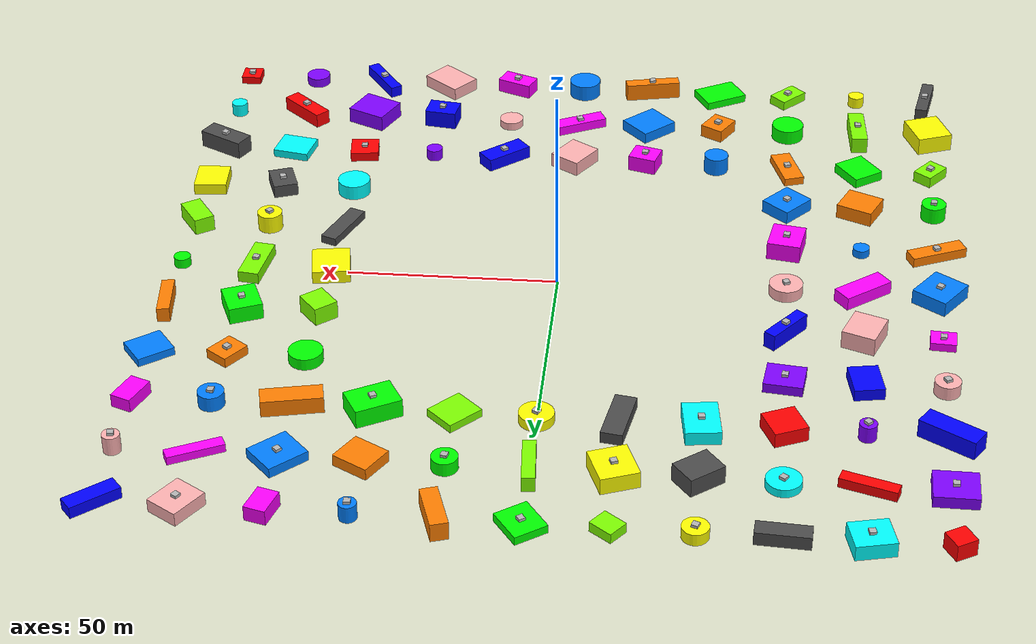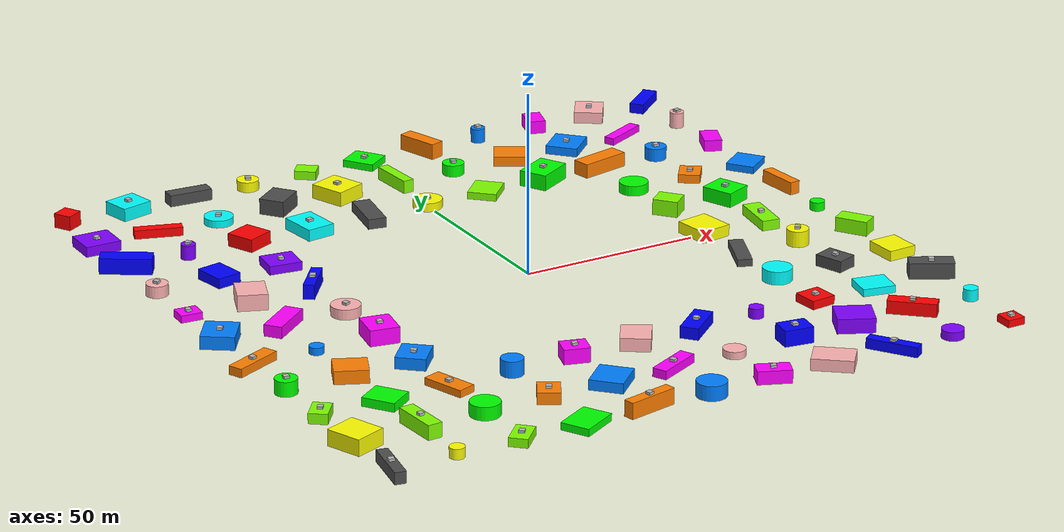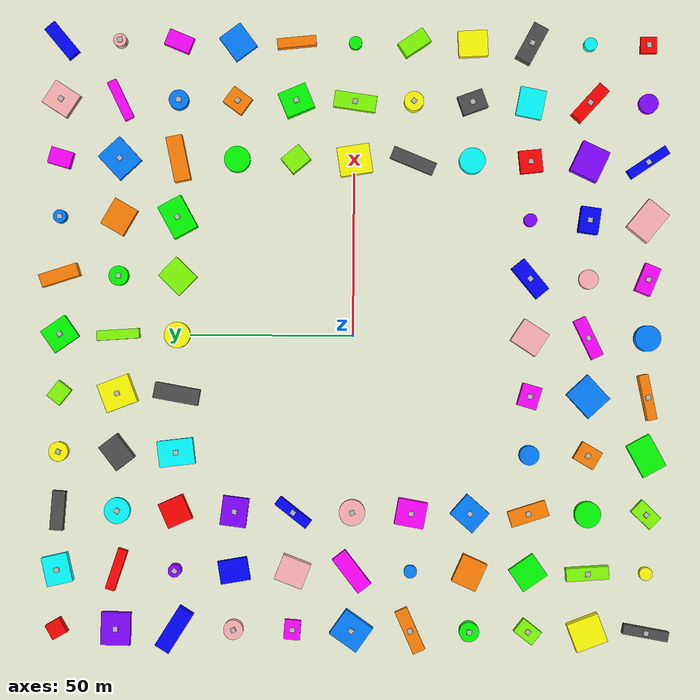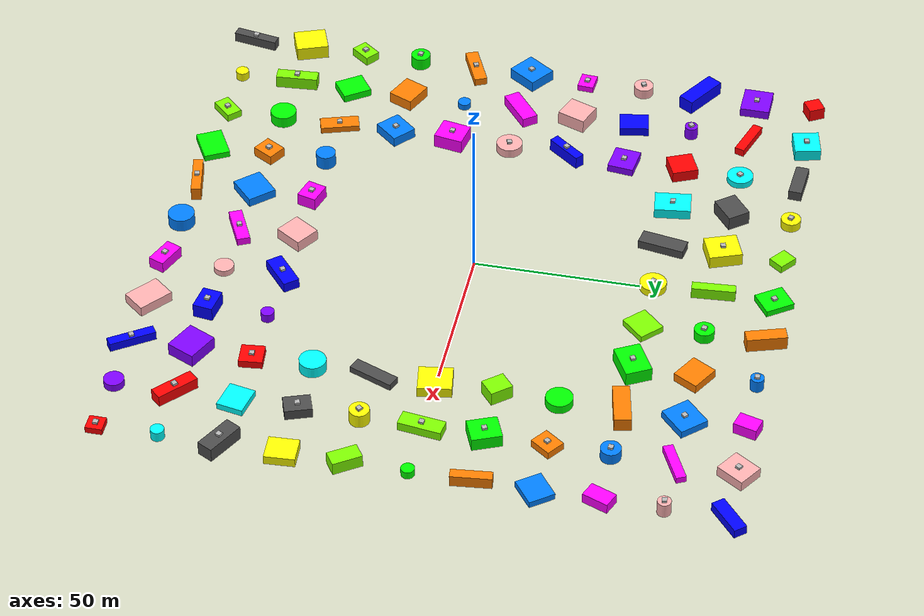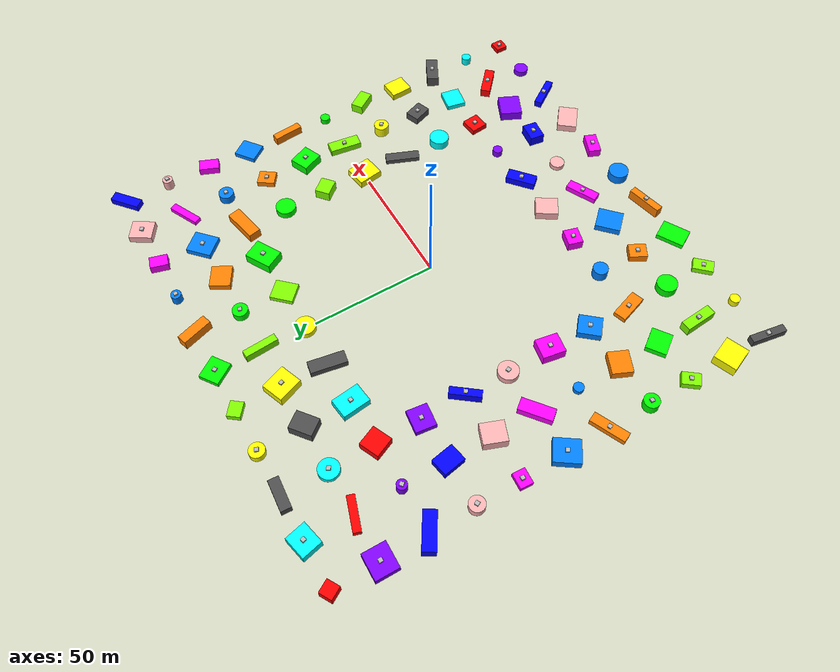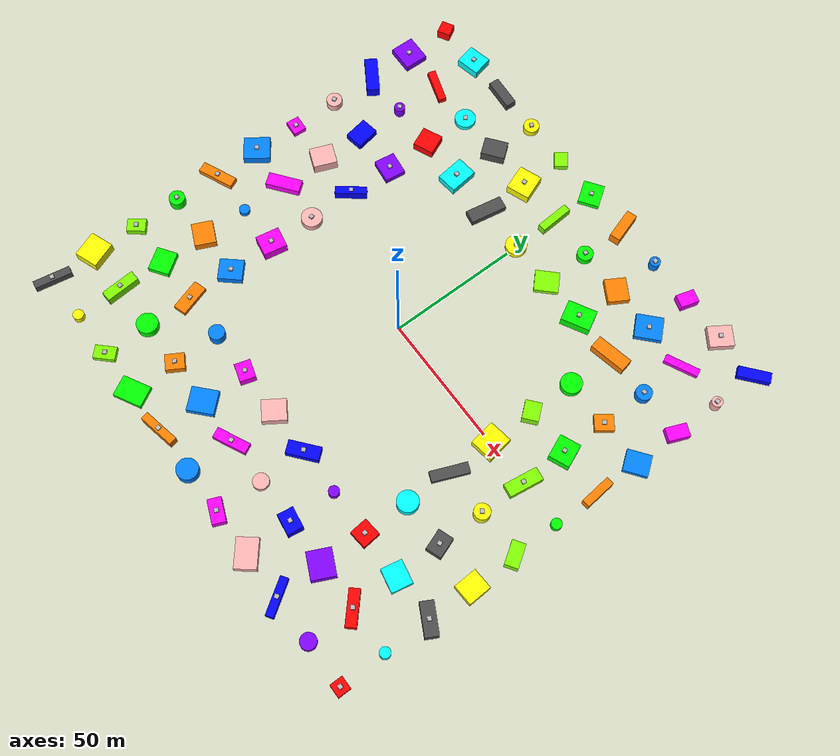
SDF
<sdf version="1.9">
 <world name="obs">
  <physics name="1ms" type="ignore">
   <max_step_size>0.001</max_step_size>
   <real_time_factor>1.0</real_time_factor>
  </physics>
  <plugin filename="gz-sim-physics-system" name="gz::sim::systems::Physics"/>
  <plugin filename="gz-sim-sensors-system" name="gz::sim::systems::Sensors">
   <render_engine>ogre2</render_engine>
  </plugin>
  <plugin filename="gz-sim-user-commands-system" name="gz::sim::systems::UserCommands"/>
  <plugin filename="gz-sim-scene-broadcaster-system" name="gz::sim::systems::SceneBroadcaster"/>
  <plugin filename="gz-sim-imu-system" name="gz::sim::systems::Imu"/>
  <plugin filename="gz-sim-navsat-system" name="gz::sim::systems::NavSat"/>
  <scene><ambient>1.0 1.0 1.0</ambient><background>0.8 0.8 0.8</background></scene>
  <spherical_coordinates>
   <latitude_deg>-35.363262</latitude_deg>
   <longitude_deg>149.165237</longitude_deg>
   <elevation>584</elevation>
   <heading_deg>0</heading_deg>
   <surface_model>EARTH_WGS84</surface_model>
  </spherical_coordinates>
  <light type="directional" name="sun">
   <pose>0 0 10 0 0 0</pose>
   <diffuse>0.8 0.8 0.8 1</diffuse>
   <specular>0.8 0.8 0.8 1</specular>
   <attenuation>
    <range>1000</range>
    <constant>0.9</constant>
    <linear>0.01</linear>
    <quadratic>0.001</quadratic>
   </attenuation>
   <direction>-0.5 0.1 -0.9</direction>
  </light>
  <model name="axes">
   <static>1</static>
   <link name="link">
    <sensor name="navsat_sensor" type="navsat"><always_on>1</always_on><update_rate>1</update_rate></sensor>
   </link>
  </model>
  <include><uri>model://colony</uri><pose degrees="true">0 0 0.195 0 0 90</pose></include>
 </world>
</sdf>

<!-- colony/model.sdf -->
<sdf version="1.10">
  <model name="slam_colony_nonneighbor">
    <static>true</static>
    <link name="obj_0">
      <pose>-90 -90 1.00 0 0 0.0000</pose>
      <visual name="visual">
        <geometry><box><size>5 5 2.0</size></box></geometry>
        <material><ambient>1 0 0 1</ambient><diffuse>1 0 0 1</diffuse></material>
      </visual>
      <collision name="collision">
        <geometry><box><size>5 5 2.0</size></box></geometry>
      </collision>
      <visual name="roof_0">
        <pose>0 0 1.35 0 0 0</pose>
        <geometry><box><size>1.5 1.5 0.7</size></box></geometry>
      </visual>
    </link>
    <link name="obj_1">
      <pose>-90 -72 1.20 0 0 0.2967</pose>
      <visual name="visual">
        <geometry><cylinder><radius>3</radius><length>2.4</length></cylinder></geometry>
        <material><ambient>0.5 0 1 1</ambient><diffuse>0.5 0 1 1</diffuse></material>
      </visual>
      <collision name="collision">
        <geometry><cylinder><radius>3</radius><length>2.4</length></cylinder></geometry>
      </collision>
    </link>
    <link name="obj_2">
      <pose>-90 -54 1.40 0 0 0.5934</pose>
      <visual name="visual">
        <geometry><box><size>14 3 2.8</size></box></geometry>
        <material><ambient>0 0 1 1</ambient><diffuse>0 0 1 1</diffuse></material>
      </visual>
      <collision name="collision">
        <geometry><box><size>14 3 2.8</size></box></geometry>
      </collision>
      <visual name="roof_2">
        <pose>0 0 1.75 0 0 0</pose>
        <geometry><box><size>1.5 1.5 0.7</size></box></geometry>
      </visual>
    </link>
    <link name="obj_3">
      <pose>-90 -36 1.60 0 0 0.8901</pose>
      <visual name="visual">
        <geometry><box><size>11 8 3.2</size></box></geometry>
        <material><ambient>1 0.7 0.7 1</ambient><diffuse>1 0.7 0.7 1</diffuse></material>
      </visual>
      <collision name="collision">
        <geometry><box><size>11 8 3.2</size></box></geometry>
      </collision>
    </link>
    <link name="obj_4">
      <pose>-90 -18 1.80 0 0 1.1868</pose>
      <visual name="visual">
        <geometry><box><size>9 5 3.6</size></box></geometry>
        <material><ambient>1 0 1 1</ambient><diffuse>1 0 1 1</diffuse></material>
      </visual>
      <collision name="collision">
        <geometry><box><size>9 5 3.6</size></box></geometry>
      </collision>
      <visual name="roof_4">
        <pose>0 0 2.15 0 0 0</pose>
        <geometry><box><size>1.5 1.5 0.7</size></box></geometry>
      </visual>
    </link>
    <link name="obj_5">
      <pose>-90 0 2.00 0 0 1.4835</pose>
      <visual name="visual">
        <geometry><cylinder><radius>4</radius><length>4.0</length></cylinder></geometry>
        <material><ambient>0 0.5 1 1</ambient><diffuse>0 0.5 1 1</diffuse></material>
      </visual>
      <collision name="collision">
        <geometry><cylinder><radius>4</radius><length>4.0</length></cylinder></geometry>
      </collision>
    </link>
    <link name="obj_6">
      <pose>-90 18 2.20 0 0 1.7802</pose>
      <visual name="visual">
        <geometry><box><size>14 3 4.4</size></box></geometry>
        <material><ambient>1 0.5 0 1</ambient><diffuse>1 0.5 0 1</diffuse></material>
      </visual>
      <collision name="collision">
        <geometry><box><size>14 3 4.4</size></box></geometry>
      </collision>
      <visual name="roof_6">
        <pose>0 0 2.55 0 0 0</pose>
        <geometry><box><size>1.5 1.5 0.7</size></box></geometry>
      </visual>
    </link>
    <link name="obj_7">
      <pose>-90 36 1.00 0 0 2.0769</pose>
      <visual name="visual">
        <geometry><box><size>11 8 2.0</size></box></geometry>
        <material><ambient>0 1 0 1</ambient><diffuse>0 1 0 1</diffuse></material>
      </visual>
      <collision name="collision">
        <geometry><box><size>11 8 2.0</size></box></geometry>
      </collision>
    </link>
    <link name="obj_8">
      <pose>-90 54 1.20 0 0 2.3736</pose>
      <visual name="visual">
        <geometry><box><size>8 5 2.4</size></box></geometry>
        <material><ambient>0.5 1 0 1</ambient><diffuse>0.5 1 0 1</diffuse></material>
      </visual>
      <collision name="collision">
        <geometry><box><size>8 5 2.4</size></box></geometry>
      </collision>
      <visual name="roof_8">
        <pose>0 0 1.55 0 0 0</pose>
        <geometry><box><size>1.5 1.5 0.7</size></box></geometry>
      </visual>
    </link>
    <link name="obj_9">
      <pose>-90 72 1.40 0 0 2.6704</pose>
      <visual name="visual">
        <geometry><cylinder><radius>2</radius><length>2.8</length></cylinder></geometry>
        <material><ambient>1 1 0 1</ambient><diffuse>1 1 0 1</diffuse></material>
      </visual>
      <collision name="collision">
        <geometry><cylinder><radius>2</radius><length>2.8</length></cylinder></geometry>
      </collision>
    </link>
    <link name="obj_10">
      <pose>-90 90 1.60 0 0 2.9671</pose>
      <visual name="visual">
        <geometry><box><size>14 3 3.2</size></box></geometry>
        <material><ambient>0.3 0.3 0.3 1</ambient><diffuse>0.3 0.3 0.3 1</diffuse></material>
      </visual>
      <collision name="collision">
        <geometry><box><size>14 3 3.2</size></box></geometry>
      </collision>
      <visual name="roof_10">
        <pose>0 0 1.95 0 0 0</pose>
        <geometry><box><size>1.5 1.5 0.7</size></box></geometry>
      </visual>
    </link>
    <link name="obj_11">
      <pose>-72 -90 1.60 0 0 0.5411</pose>
      <visual name="visual">
        <geometry><cylinder><radius>2</radius><length>3.2</length></cylinder></geometry>
        <material><ambient>0 1 1 1</ambient><diffuse>0 1 1 1</diffuse></material>
      </visual>
      <collision name="collision">
        <geometry><cylinder><radius>2</radius><length>3.2</length></cylinder></geometry>
      </collision>
    </link>
    <link name="obj_12">
      <pose>-72 -72 1.80 0 0 0.8378</pose>
      <visual name="visual">
        <geometry><box><size>13 4 3.6</size></box></geometry>
        <material><ambient>1 0 0 1</ambient><diffuse>1 0 0 1</diffuse></material>
      </visual>
      <collision name="collision">
        <geometry><box><size>13 4 3.6</size></box></geometry>
      </collision>
      <visual name="roof_12">
        <pose>0 0 2.15 0 0 0</pose>
        <geometry><box><size>1.5 1.5 0.7</size></box></geometry>
      </visual>
    </link>
    <link name="obj_13">
      <pose>-72 -54 2.00 0 0 1.1345</pose>
      <visual name="visual">
        <geometry><box><size>10 9 4.0</size></box></geometry>
        <material><ambient>0.5 0 1 1</ambient><diffuse>0.5 0 1 1</diffuse></material>
      </visual>
      <collision name="collision">
        <geometry><box><size>10 9 4.0</size></box></geometry>
      </collision>
    </link>
    <link name="obj_14">
      <pose>-72 -36 2.20 0 0 1.4312</pose>
      <visual name="visual">
        <geometry><box><size>8 6 4.4</size></box></geometry>
        <material><ambient>0 0 1 1</ambient><diffuse>0 0 1 1</diffuse></material>
      </visual>
      <collision name="collision">
        <geometry><box><size>8 6 4.4</size></box></geometry>
      </collision>
      <visual name="roof_14">
        <pose>0 0 2.55 0 0 0</pose>
        <geometry><box><size>1.5 1.5 0.7</size></box></geometry>
      </visual>
    </link>
    <link name="obj_15">
      <pose>-72 -18 1.00 0 0 1.7279</pose>
      <visual name="visual">
        <geometry><cylinder><radius>3</radius><length>2.0</length></cylinder></geometry>
        <material><ambient>1 0.7 0.7 1</ambient><diffuse>1 0.7 0.7 1</diffuse></material>
      </visual>
      <collision name="collision">
        <geometry><cylinder><radius>3</radius><length>2.0</length></cylinder></geometry>
      </collision>
    </link>
    <link name="obj_16">
      <pose>-72 0 1.20 0 0 2.0246</pose>
      <visual name="visual">
        <geometry><box><size>13 4 2.4</size></box></geometry>
        <material><ambient>1 0 1 1</ambient><diffuse>1 0 1 1</diffuse></material>
      </visual>
      <collision name="collision">
        <geometry><box><size>13 4 2.4</size></box></geometry>
      </collision>
      <visual name="roof_16">
        <pose>0 0 1.55 0 0 0</pose>
        <geometry><box><size>1.5 1.5 0.7</size></box></geometry>
      </visual>
    </link>
    <link name="obj_17">
      <pose>-72 18 1.40 0 0 2.3213</pose>
      <visual name="visual">
        <geometry><box><size>10 9 2.8</size></box></geometry>
        <material><ambient>0 0.5 1 1</ambient><diffuse>0 0.5 1 1</diffuse></material>
      </visual>
      <collision name="collision">
        <geometry><box><size>10 9 2.8</size></box></geometry>
      </collision>
    </link>
    <link name="obj_18">
      <pose>-72 36 1.60 0 0 2.6180</pose>
      <visual name="visual">
        <geometry><box><size>7 6 3.2</size></box></geometry>
        <material><ambient>1 0.5 0 1</ambient><diffuse>1 0.5 0 1</diffuse></material>
      </visual>
      <collision name="collision">
        <geometry><box><size>7 6 3.2</size></box></geometry>
      </collision>
      <visual name="roof_18">
        <pose>0 0 1.95 0 0 0</pose>
        <geometry><box><size>1.5 1.5 0.7</size></box></geometry>
      </visual>
    </link>
    <link name="obj_19">
      <pose>-72 54 1.80 0 0 2.9147</pose>
      <visual name="visual">
        <geometry><cylinder><radius>4</radius><length>3.6</length></cylinder></geometry>
        <material><ambient>0 1 0 1</ambient><diffuse>0 1 0 1</diffuse></material>
      </visual>
      <collision name="collision">
        <geometry><cylinder><radius>4</radius><length>3.6</length></cylinder></geometry>
      </collision>
    </link>
    <link name="obj_20">
      <pose>-72 72 2.00 0 0 0.0698</pose>
      <visual name="visual">
        <geometry><box><size>13 4 4.0</size></box></geometry>
        <material><ambient>0.5 1 0 1</ambient><diffuse>0.5 1 0 1</diffuse></material>
      </visual>
      <collision name="collision">
        <geometry><box><size>13 4 4.0</size></box></geometry>
      </collision>
      <visual name="roof_20">
        <pose>0 0 2.35 0 0 0</pose>
        <geometry><box><size>1.5 1.5 0.7</size></box></geometry>
      </visual>
    </link>
    <link name="obj_21">
      <pose>-72 90 2.20 0 0 0.3665</pose>
      <visual name="visual">
        <geometry><box><size>10 9 4.4</size></box></geometry>
        <material><ambient>1 1 0 1</ambient><diffuse>1 1 0 1</diffuse></material>
      </visual>
      <collision name="collision">
        <geometry><box><size>10 9 4.4</size></box></geometry>
      </collision>
    </link>
    <link name="obj_22">
      <pose>-54 -90 2.20 0 0 1.0821</pose>
      <visual name="visual">
        <geometry><box><size>12 5 4.4</size></box></geometry>
        <material><ambient>0.3 0.3 0.3 1</ambient><diffuse>0.3 0.3 0.3 1</diffuse></material>
      </visual>
      <collision name="collision">
        <geometry><box><size>12 5 4.4</size></box></geometry>
      </collision>
      <visual name="roof_22">
        <pose>0 0 2.55 0 0 0</pose>
        <geometry><box><size>1.5 1.5 0.7</size></box></geometry>
      </visual>
    </link>
    <link name="obj_23">
      <pose>-54 -72 1.00 0 0 1.3788</pose>
      <visual name="visual">
        <geometry><box><size>9 8 2.0</size></box></geometry>
        <material><ambient>0 1 1 1</ambient><diffuse>0 1 1 1</diffuse></material>
      </visual>
      <collision name="collision">
        <geometry><box><size>9 8 2.0</size></box></geometry>
      </collision>
    </link>
    <link name="obj_24">
      <pose>-54 -54 1.20 0 0 1.6755</pose>
      <visual name="visual">
        <geometry><box><size>7 7 2.4</size></box></geometry>
        <material><ambient>1 0 0 1</ambient><diffuse>1 0 0 1</diffuse></material>
      </visual>
      <collision name="collision">
        <geometry><box><size>7 7 2.4</size></box></geometry>
      </collision>
      <visual name="roof_24">
        <pose>0 0 1.55 0 0 0</pose>
        <geometry><box><size>1.5 1.5 0.7</size></box></geometry>
      </visual>
    </link>
    <link name="obj_25">
      <pose>-54 -36 1.40 0 0 1.9722</pose>
      <visual name="visual">
        <geometry><cylinder><radius>2</radius><length>2.8</length></cylinder></geometry>
        <material><ambient>0.5 0 1 1</ambient><diffuse>0.5 0 1 1</diffuse></material>
      </visual>
      <collision name="collision">
        <geometry><cylinder><radius>2</radius><length>2.8</length></cylinder></geometry>
      </collision>
    </link>
    <link name="obj_26">
      <pose>-54 -18 1.60 0 0 2.2689</pose>
      <visual name="visual">
        <geometry><box><size>12 5 3.2</size></box></geometry>
        <material><ambient>0 0 1 1</ambient><diffuse>0 0 1 1</diffuse></material>
      </visual>
      <collision name="collision">
        <geometry><box><size>12 5 3.2</size></box></geometry>
      </collision>
      <visual name="roof_26">
        <pose>0 0 1.95 0 0 0</pose>
        <geometry><box><size>1.5 1.5 0.7</size></box></geometry>
      </visual>
    </link>
    <link name="obj_27">
      <pose>-54 0 1.80 0 0 2.5656</pose>
      <visual name="visual">
        <geometry><box><size>9 8 3.6</size></box></geometry>
        <material><ambient>1 0.7 0.7 1</ambient><diffuse>1 0.7 0.7 1</diffuse></material>
      </visual>
      <collision name="collision">
        <geometry><box><size>9 8 3.6</size></box></geometry>
      </collision>
    </link>
    <link name="obj_28">
      <pose>-54 18 2.00 0 0 2.8623</pose>
      <visual name="visual">
        <geometry><box><size>6 7 4.0</size></box></geometry>
        <material><ambient>1 0 1 1</ambient><diffuse>1 0 1 1</diffuse></material>
      </visual>
      <collision name="collision">
        <geometry><box><size>6 7 4.0</size></box></geometry>
      </collision>
      <visual name="roof_28">
        <pose>0 0 2.35 0 0 0</pose>
        <geometry><box><size>1.5 1.5 0.7</size></box></geometry>
      </visual>
    </link>
    <link name="obj_29">
      <pose>-54 36 2.20 0 0 0.0175</pose>
      <visual name="visual">
        <geometry><cylinder><radius>3</radius><length>4.4</length></cylinder></geometry>
        <material><ambient>0 0.5 1 1</ambient><diffuse>0 0.5 1 1</diffuse></material>
      </visual>
      <collision name="collision">
        <geometry><cylinder><radius>3</radius><length>4.4</length></cylinder></geometry>
      </collision>
    </link>
    <link name="obj_30">
      <pose>-54 54 1.00 0 0 0.3142</pose>
      <visual name="visual">
        <geometry><box><size>12 5 2.0</size></box></geometry>
        <material><ambient>1 0.5 0 1</ambient><diffuse>1 0.5 0 1</diffuse></material>
      </visual>
      <collision name="collision">
        <geometry><box><size>12 5 2.0</size></box></geometry>
      </collision>
      <visual name="roof_30">
        <pose>0 0 1.35 0 0 0</pose>
        <geometry><box><size>1.5 1.5 0.7</size></box></geometry>
      </visual>
    </link>
    <link name="obj_31">
      <pose>-54 72 1.20 0 0 0.6109</pose>
      <visual name="visual">
        <geometry><box><size>9 8 2.4</size></box></geometry>
        <material><ambient>0 1 0 1</ambient><diffuse>0 1 0 1</diffuse></material>
      </visual>
      <collision name="collision">
        <geometry><box><size>9 8 2.4</size></box></geometry>
      </collision>
    </link>
    <link name="obj_32">
      <pose>-54 90 1.40 0 0 0.9076</pose>
      <visual name="visual">
        <geometry><box><size>5 7 2.8</size></box></geometry>
        <material><ambient>0.5 1 0 1</ambient><diffuse>0.5 1 0 1</diffuse></material>
      </visual>
      <collision name="collision">
        <geometry><box><size>5 7 2.8</size></box></geometry>
      </collision>
      <visual name="roof_32">
        <pose>0 0 1.75 0 0 0</pose>
        <geometry><box><size>1.5 1.5 0.7</size></box></geometry>
      </visual>
    </link>
    <link name="obj_33">
      <pose>-36 -90 1.40 0 0 1.6232</pose>
      <visual name="visual">
        <geometry><box><size>8 9 2.8</size></box></geometry>
        <material><ambient>1 1 0 1</ambient><diffuse>1 1 0 1</diffuse></material>
      </visual>
      <collision name="collision">
        <geometry><box><size>8 9 2.8</size></box></geometry>
      </collision>
    </link>
    <link name="obj_34">
      <pose>-36 -72 1.60 0 0 1.9199</pose>
      <visual name="visual">
        <geometry><box><size>6 8 3.2</size></box></geometry>
        <material><ambient>0.3 0.3 0.3 1</ambient><diffuse>0.3 0.3 0.3 1</diffuse></material>
      </visual>
      <collision name="collision">
        <geometry><box><size>6 8 3.2</size></box></geometry>
      </collision>
      <visual name="roof_34">
        <pose>0 0 1.95 0 0 0</pose>
        <geometry><box><size>1.5 1.5 0.7</size></box></geometry>
      </visual>
    </link>
    <link name="obj_35">
      <pose>-36 -54 1.80 0 0 2.2166</pose>
      <visual name="visual">
        <geometry><cylinder><radius>4</radius><length>3.6</length></cylinder></geometry>
        <material><ambient>0 1 1 1</ambient><diffuse>0 1 1 1</diffuse></material>
      </visual>
      <collision name="collision">
        <geometry><cylinder><radius>4</radius><length>3.6</length></cylinder></geometry>
      </collision>
    </link>
    <link name="obj_36">
      <pose>-36 54 1.60 0 0 0.8552</pose>
      <visual name="visual">
        <geometry><box><size>8 9 3.2</size></box></geometry>
        <material><ambient>0 0.5 1 1</ambient><diffuse>0 0.5 1 1</diffuse></material>
      </visual>
      <collision name="collision">
        <geometry><box><size>8 9 3.2</size></box></geometry>
      </collision>
      <visual name="roof_36">
        <pose>0 0 1.95 0 0 0</pose>
        <geometry><box><size>1.5 1.5 0.7</size></box></geometry>
      </visual>
    </link>
    <link name="obj_37">
      <pose>-36 72 1.80 0 0 1.1519</pose>
      <visual name="visual">
        <geometry><box><size>9 8 3.6</size></box></geometry>
        <material><ambient>1 0.5 0 1</ambient><diffuse>1 0.5 0 1</diffuse></material>
      </visual>
      <collision name="collision">
        <geometry><box><size>9 8 3.6</size></box></geometry>
      </collision>
    </link>
    <link name="obj_38">
      <pose>-36 90 2.00 0 0 1.4486</pose>
      <visual name="visual">
        <geometry><cylinder><radius>3</radius><length>4.0</length></cylinder></geometry>
        <material><ambient>0 1 0 1</ambient><diffuse>0 1 0 1</diffuse></material>
      </visual>
      <collision name="collision">
        <geometry><cylinder><radius>3</radius><length>4.0</length></cylinder></geometry>
      </collision>
      <visual name="roof_38">
        <pose>0 0 2.35 0 0 0</pose>
        <geometry><box><size>1.5 1.5 0.7</size></box></geometry>
      </visual>
    </link>
    <link name="obj_39">
      <pose>-18 -90 2.00 0 0 2.1642</pose>
      <visual name="visual">
        <geometry><box><size>5 9 4.0</size></box></geometry>
        <material><ambient>0.5 1 0 1</ambient><diffuse>0.5 1 0 1</diffuse></material>
      </visual>
      <collision name="collision">
        <geometry><box><size>5 9 4.0</size></box></geometry>
      </collision>
    </link>
    <link name="obj_40">
      <pose>-18 -72 2.20 0 0 2.4609</pose>
      <visual name="visual">
        <geometry><cylinder><radius>3</radius><length>4.4</length></cylinder></geometry>
        <material><ambient>1 1 0 1</ambient><diffuse>1 1 0 1</diffuse></material>
      </visual>
      <collision name="collision">
        <geometry><cylinder><radius>3</radius><length>4.4</length></cylinder></geometry>
      </collision>
      <visual name="roof_40">
        <pose>0 0 2.55 0 0 0</pose>
        <geometry><box><size>1.5 1.5 0.7</size></box></geometry>
      </visual>
    </link>
    <link name="obj_41">
      <pose>-18 -54 1.00 0 0 2.7576</pose>
      <visual name="visual">
        <geometry><box><size>14 4 2.0</size></box></geometry>
        <material><ambient>0.3 0.3 0.3 1</ambient><diffuse>0.3 0.3 0.3 1</diffuse></material>
      </visual>
      <collision name="collision">
        <geometry><box><size>14 4 2.0</size></box></geometry>
      </collision>
    </link>
    <link name="obj_42">
      <pose>-18 54 2.20 0 0 1.3963</pose>
      <visual name="visual">
        <geometry><box><size>8 9 4.4</size></box></geometry>
        <material><ambient>1 0 1 1</ambient><diffuse>1 0 1 1</diffuse></material>
      </visual>
      <collision name="collision">
        <geometry><box><size>8 9 4.4</size></box></geometry>
      </collision>
      <visual name="roof_42">
        <pose>0 0 2.55 0 0 0</pose>
        <geometry><box><size>1.5 1.5 0.7</size></box></geometry>
      </visual>
    </link>
    <link name="obj_43">
      <pose>-18 72 1.00 0 0 1.6930</pose>
      <visual name="visual">
        <geometry><cylinder><radius>2</radius><length>2.0</length></cylinder></geometry>
        <material><ambient>0 0.5 1 1</ambient><diffuse>0 0.5 1 1</diffuse></material>
      </visual>
      <collision name="collision">
        <geometry><cylinder><radius>2</radius><length>2.0</length></cylinder></geometry>
      </collision>
    </link>
    <link name="obj_44">
      <pose>-18 90 1.20 0 0 1.9897</pose>
      <visual name="visual">
        <geometry><box><size>14 4 2.4</size></box></geometry>
        <material><ambient>1 0.5 0 1</ambient><diffuse>1 0.5 0 1</diffuse></material>
      </visual>
      <collision name="collision">
        <geometry><box><size>14 4 2.4</size></box></geometry>
      </collision>
      <visual name="roof_44">
        <pose>0 0 1.55 0 0 0</pose>
        <geometry><box><size>1.5 1.5 0.7</size></box></geometry>
      </visual>
    </link>
    <link name="obj_45">
      <pose>0 -90 1.20 0 0 2.7053</pose>
      <visual name="visual">
        <geometry><cylinder><radius>2</radius><length>2.4</length></cylinder></geometry>
        <material><ambient>0 1 0 1</ambient><diffuse>0 1 0 1</diffuse></material>
      </visual>
      <collision name="collision">
        <geometry><cylinder><radius>2</radius><length>2.4</length></cylinder></geometry>
      </collision>
    </link>
    <link name="obj_46">
      <pose>0 -72 1.40 0 0 3.0020</pose>
      <visual name="visual">
        <geometry><box><size>13 5 2.8</size></box></geometry>
        <material><ambient>0.5 1 0 1</ambient><diffuse>0.5 1 0 1</diffuse></material>
      </visual>
      <collision name="collision">
        <geometry><box><size>13 5 2.8</size></box></geometry>
      </collision>
      <visual name="roof_46">
        <pose>0 0 1.75 0 0 0</pose>
        <geometry><box><size>1.5 1.5 0.7</size></box></geometry>
      </visual>
    </link>
    <link name="obj_47">
      <pose>0 -54 1.60 0 0 0.1571</pose>
      <visual name="visual">
        <geometry><box><size>10 9 3.2</size></box></geometry>
        <material><ambient>1 1 0 1</ambient><diffuse>1 1 0 1</diffuse></material>
      </visual>
      <collision name="collision">
        <geometry><box><size>10 9 3.2</size></box></geometry>
      </collision>
    </link>
    <link name="obj_48">
      <pose>0 54 1.40 0 0 1.9373</pose>
      <visual name="visual">
        <geometry><cylinder><radius>4</radius><length>2.8</length></cylinder></geometry>
        <material><ambient>1 0.7 0.7 1</ambient><diffuse>1 0.7 0.7 1</diffuse></material>
      </visual>
      <collision name="collision">
        <geometry><cylinder><radius>4</radius><length>2.8</length></cylinder></geometry>
      </collision>
      <visual name="roof_48">
        <pose>0 0 1.75 0 0 0</pose>
        <geometry><box><size>1.5 1.5 0.7</size></box></geometry>
      </visual>
    </link>
    <link name="obj_49">
      <pose>0 72 1.60 0 0 2.2340</pose>
      <visual name="visual">
        <geometry><box><size>13 5 3.2</size></box></geometry>
        <material><ambient>1 0 1 1</ambient><diffuse>1 0 1 1</diffuse></material>
      </visual>
      <collision name="collision">
        <geometry><box><size>13 5 3.2</size></box></geometry>
      </collision>
    </link>
    <link name="obj_50">
      <pose>0 90 1.80 0 0 2.5307</pose>
      <visual name="visual">
        <geometry><box><size>10 9 3.6</size></box></geometry>
        <material><ambient>0 0.5 1 1</ambient><diffuse>0 0.5 1 1</diffuse></material>
      </visual>
      <collision name="collision">
        <geometry><box><size>10 9 3.6</size></box></geometry>
      </collision>
      <visual name="roof_50">
        <pose>0 0 2.15 0 0 0</pose>
        <geometry><box><size>1.5 1.5 0.7</size></box></geometry>
      </visual>
    </link>
    <link name="obj_51">
      <pose>18 -90 1.80 0 0 0.1047</pose>
      <visual name="visual">
        <geometry><box><size>12 3 3.6</size></box></geometry>
        <material><ambient>1 0.5 0 1</ambient><diffuse>1 0.5 0 1</diffuse></material>
      </visual>
      <collision name="collision">
        <geometry><box><size>12 3 3.6</size></box></geometry>
      </collision>
    </link>
    <link name="obj_52">
      <pose>18 -72 2.00 0 0 0.4014</pose>
      <visual name="visual">
        <geometry><box><size>9 8 4.0</size></box></geometry>
        <material><ambient>0 1 0 1</ambient><diffuse>0 1 0 1</diffuse></material>
      </visual>
      <collision name="collision">
        <geometry><box><size>9 8 4.0</size></box></geometry>
      </collision>
      <visual name="roof_52">
        <pose>0 0 2.35 0 0 0</pose>
        <geometry><box><size>1.5 1.5 0.7</size></box></geometry>
      </visual>
    </link>
    <link name="obj_53">
      <pose>18 -54 2.20 0 0 0.6981</pose>
      <visual name="visual">
        <geometry><box><size>7 6 4.4</size></box></geometry>
        <material><ambient>0.5 1 0 1</ambient><diffuse>0.5 1 0 1</diffuse></material>
      </visual>
      <collision name="collision">
        <geometry><box><size>7 6 4.4</size></box></geometry>
      </collision>
    </link>
    <link name="obj_54">
      <pose>18 54 2.00 0 0 2.4784</pose>
      <visual name="visual">
        <geometry><box><size>12 3 4.0</size></box></geometry>
        <material><ambient>0 0 1 1</ambient><diffuse>0 0 1 1</diffuse></material>
      </visual>
      <collision name="collision">
        <geometry><box><size>12 3 4.0</size></box></geometry>
      </collision>
      <visual name="roof_54">
        <pose>0 0 2.35 0 0 0</pose>
        <geometry><box><size>1.5 1.5 0.7</size></box></geometry>
      </visual>
    </link>
    <link name="obj_55">
      <pose>18 72 2.20 0 0 2.7751</pose>
      <visual name="visual">
        <geometry><box><size>9 8 4.4</size></box></geometry>
        <material><ambient>1 0.7 0.7 1</ambient><diffuse>1 0.7 0.7 1</diffuse></material>
      </visual>
      <collision name="collision">
        <geometry><box><size>9 8 4.4</size></box></geometry>
      </collision>
    </link>
    <link name="obj_56">
      <pose>18 90 1.00 0 0 3.0718</pose>
      <visual name="visual">
        <geometry><box><size>5 6 2.0</size></box></geometry>
        <material><ambient>1 0 1 1</ambient><diffuse>1 0 1 1</diffuse></material>
      </visual>
      <collision name="collision">
        <geometry><box><size>5 6 2.0</size></box></geometry>
      </collision>
      <visual name="roof_56">
        <pose>0 0 1.35 0 0 0</pose>
        <geometry><box><size>1.5 1.5 0.7</size></box></geometry>
      </visual>
    </link>
    <link name="obj_57">
      <pose>36 -90 1.00 0 0 0.6458</pose>
      <visual name="visual">
        <geometry><box><size>8 9 2.0</size></box></geometry>
        <material><ambient>0 0.5 1 1</ambient><diffuse>0 0.5 1 1</diffuse></material>
      </visual>
      <collision name="collision">
        <geometry><box><size>8 9 2.0</size></box></geometry>
      </collision>
    </link>
    <link name="obj_58">
      <pose>36 -72 1.20 0 0 0.9425</pose>
      <visual name="visual">
        <geometry><box><size>6 7 2.4</size></box></geometry>
        <material><ambient>1 0.5 0 1</ambient><diffuse>1 0.5 0 1</diffuse></material>
      </visual>
      <collision name="collision">
        <geometry><box><size>6 7 2.4</size></box></geometry>
      </collision>
      <visual name="roof_58">
        <pose>0 0 1.55 0 0 0</pose>
        <geometry><box><size>1.5 1.5 0.7</size></box></geometry>
      </visual>
    </link>
    <link name="obj_59">
      <pose>36 -54 1.40 0 0 1.2392</pose>
      <visual name="visual">
        <geometry><cylinder><radius>4</radius><length>2.8</length></cylinder></geometry>
        <material><ambient>0 1 0 1</ambient><diffuse>0 1 0 1</diffuse></material>
      </visual>
      <collision name="collision">
        <geometry><cylinder><radius>4</radius><length>2.8</length></cylinder></geometry>
      </collision>
    </link>
    <link name="obj_60">
      <pose>36 54 1.20 0 0 3.0194</pose>
      <visual name="visual">
        <geometry><box><size>8 9 2.4</size></box></geometry>
        <material><ambient>0.5 0 1 1</ambient><diffuse>0.5 0 1 1</diffuse></material>
      </visual>
      <collision name="collision">
        <geometry><box><size>8 9 2.4</size></box></geometry>
      </collision>
      <visual name="roof_60">
        <pose>0 0 1.55 0 0 0</pose>
        <geometry><box><size>1.5 1.5 0.7</size></box></geometry>
      </visual>
    </link>
    <link name="obj_61">
      <pose>36 72 1.40 0 0 0.1745</pose>
      <visual name="visual">
        <geometry><box><size>9 7 2.8</size></box></geometry>
        <material><ambient>0 0 1 1</ambient><diffuse>0 0 1 1</diffuse></material>
      </visual>
      <collision name="collision">
        <geometry><box><size>9 7 2.8</size></box></geometry>
      </collision>
    </link>
    <link name="obj_62">
      <pose>36 90 1.60 0 0 0.4712</pose>
      <visual name="visual">
        <geometry><cylinder><radius>3</radius><length>3.2</length></cylinder></geometry>
        <material><ambient>1 0.7 0.7 1</ambient><diffuse>1 0.7 0.7 1</diffuse></material>
      </visual>
      <collision name="collision">
        <geometry><cylinder><radius>3</radius><length>3.2</length></cylinder></geometry>
      </collision>
      <visual name="roof_62">
        <pose>0 0 1.95 0 0 0</pose>
        <geometry><box><size>1.5 1.5 0.7</size></box></geometry>
      </visual>
    </link>
    <link name="obj_63">
      <pose>54 -90 1.60 0 0 1.1868</pose>
      <visual name="visual">
        <geometry><box><size>5 8 3.2</size></box></geometry>
        <material><ambient>1 0 1 1</ambient><diffuse>1 0 1 1</diffuse></material>
      </visual>
      <collision name="collision">
        <geometry><box><size>5 8 3.2</size></box></geometry>
      </collision>
    </link>
    <link name="obj_64">
      <pose>54 -72 1.80 0 0 1.4835</pose>
      <visual name="visual">
        <geometry><cylinder><radius>3</radius><length>3.6</length></cylinder></geometry>
        <material><ambient>0 0.5 1 1</ambient><diffuse>0 0.5 1 1</diffuse></material>
      </visual>
      <collision name="collision">
        <geometry><cylinder><radius>3</radius><length>3.6</length></cylinder></geometry>
      </collision>
      <visual name="roof_64">
        <pose>0 0 2.15 0 0 0</pose>
        <geometry><box><size>1.5 1.5 0.7</size></box></geometry>
      </visual>
    </link>
    <link name="obj_65">
      <pose>54 -54 2.00 0 0 1.7802</pose>
      <visual name="visual">
        <geometry><box><size>14 5 4.0</size></box></geometry>
        <material><ambient>1 0.5 0 1</ambient><diffuse>1 0.5 0 1</diffuse></material>
      </visual>
      <collision name="collision">
        <geometry><box><size>14 5 4.0</size></box></geometry>
      </collision>
    </link>
    <link name="obj_66">
      <pose>54 -36 2.20 0 0 2.0769</pose>
      <visual name="visual">
        <geometry><box><size>11 8 4.4</size></box></geometry>
        <material><ambient>0 1 0 1</ambient><diffuse>0 1 0 1</diffuse></material>
      </visual>
      <collision name="collision">
        <geometry><box><size>11 8 4.4</size></box></geometry>
      </collision>
      <visual name="roof_66">
        <pose>0 0 2.55 0 0 0</pose>
        <geometry><box><size>1.5 1.5 0.7</size></box></geometry>
      </visual>
    </link>
    <link name="obj_67">
      <pose>54 -18 1.00 0 0 2.3736</pose>
      <visual name="visual">
        <geometry><box><size>9 8 2.0</size></box></geometry>
        <material><ambient>0.5 1 0 1</ambient><diffuse>0.5 1 0 1</diffuse></material>
      </visual>
      <collision name="collision">
        <geometry><box><size>9 8 2.0</size></box></geometry>
      </collision>
    </link>
    <link name="obj_68">
      <pose>54 0 1.20 0 0 2.6704</pose>
      <visual name="visual">
        <geometry><cylinder><radius>4</radius><length>2.4</length></cylinder></geometry>
        <material><ambient>1 1 0 1</ambient><diffuse>1 1 0 1</diffuse></material>
      </visual>
      <collision name="collision">
        <geometry><cylinder><radius>4</radius><length>2.4</length></cylinder></geometry>
      </collision>
      <visual name="roof_68">
        <pose>0 0 1.55 0 0 0</pose>
        <geometry><box><size>1.5 1.5 0.7</size></box></geometry>
      </visual>
    </link>
    <link name="obj_69">
      <pose>54 18 1.40 0 0 2.9671</pose>
      <visual name="visual">
        <geometry><box><size>14 5 2.8</size></box></geometry>
        <material><ambient>0.3 0.3 0.3 1</ambient><diffuse>0.3 0.3 0.3 1</diffuse></material>
      </visual>
      <collision name="collision">
        <geometry><box><size>14 5 2.8</size></box></geometry>
      </collision>
    </link>
    <link name="obj_70">
      <pose>54 36 1.60 0 0 0.1222</pose>
      <visual name="visual">
        <geometry><box><size>11 8 3.2</size></box></geometry>
        <material><ambient>0 1 1 1</ambient><diffuse>0 1 1 1</diffuse></material>
      </visual>
      <collision name="collision">
        <geometry><box><size>11 8 3.2</size></box></geometry>
      </collision>
      <visual name="roof_70">
        <pose>0 0 1.95 0 0 0</pose>
        <geometry><box><size>1.5 1.5 0.7</size></box></geometry>
      </visual>
    </link>
    <link name="obj_71">
      <pose>54 54 1.80 0 0 0.4189</pose>
      <visual name="visual">
        <geometry><box><size>8 8 3.6</size></box></geometry>
        <material><ambient>1 0 0 1</ambient><diffuse>1 0 0 1</diffuse></material>
      </visual>
      <collision name="collision">
        <geometry><box><size>8 8 3.6</size></box></geometry>
      </collision>
    </link>
    <link name="obj_72">
      <pose>54 72 2.00 0 0 0.7156</pose>
      <visual name="visual">
        <geometry><cylinder><radius>2</radius><length>4.0</length></cylinder></geometry>
        <material><ambient>0.5 0 1 1</ambient><diffuse>0.5 0 1 1</diffuse></material>
      </visual>
      <collision name="collision">
        <geometry><cylinder><radius>2</radius><length>4.0</length></cylinder></geometry>
      </collision>
      <visual name="roof_72">
        <pose>0 0 2.35 0 0 0</pose>
        <geometry><box><size>1.5 1.5 0.7</size></box></geometry>
      </visual>
    </link>
    <link name="obj_73">
      <pose>54 90 2.20 0 0 1.0123</pose>
      <visual name="visual">
        <geometry><box><size>14 5 4.4</size></box></geometry>
        <material><ambient>0 0 1 1</ambient><diffuse>0 0 1 1</diffuse></material>
      </visual>
      <collision name="collision">
        <geometry><box><size>14 5 4.4</size></box></geometry>
      </collision>
    </link>
    <link name="obj_74">
      <pose>72 -90 2.20 0 0 1.7279</pose>
      <visual name="visual">
        <geometry><cylinder><radius>2</radius><length>4.4</length></cylinder></geometry>
        <material><ambient>1 0.7 0.7 1</ambient><diffuse>1 0.7 0.7 1</diffuse></material>
      </visual>
      <collision name="collision">
        <geometry><cylinder><radius>2</radius><length>4.4</length></cylinder></geometry>
      </collision>
      <visual name="roof_74">
        <pose>0 0 2.55 0 0 0</pose>
        <geometry><box><size>1.5 1.5 0.7</size></box></geometry>
      </visual>
    </link>
    <link name="obj_75">
      <pose>72 -72 1.00 0 0 2.0246</pose>
      <visual name="visual">
        <geometry><box><size>13 3 2.0</size></box></geometry>
        <material><ambient>1 0 1 1</ambient><diffuse>1 0 1 1</diffuse></material>
      </visual>
      <collision name="collision">
        <geometry><box><size>13 3 2.0</size></box></geometry>
      </collision>
    </link>
    <link name="obj_76">
      <pose>72 -54 1.20 0 0 2.3213</pose>
      <visual name="visual">
        <geometry><box><size>10 9 2.4</size></box></geometry>
        <material><ambient>0 0.5 1 1</ambient><diffuse>0 0.5 1 1</diffuse></material>
      </visual>
      <collision name="collision">
        <geometry><box><size>10 9 2.4</size></box></geometry>
      </collision>
      <visual name="roof_76">
        <pose>0 0 1.55 0 0 0</pose>
        <geometry><box><size>1.5 1.5 0.7</size></box></geometry>
      </visual>
    </link>
    <link name="obj_77">
      <pose>72 -36 1.40 0 0 2.6180</pose>
      <visual name="visual">
        <geometry><box><size>8 9 2.8</size></box></geometry>
        <material><ambient>1 0.5 0 1</ambient><diffuse>1 0.5 0 1</diffuse></material>
      </visual>
      <collision name="collision">
        <geometry><box><size>8 9 2.8</size></box></geometry>
      </collision>
    </link>
    <link name="obj_78">
      <pose>72 -18 1.60 0 0 2.9147</pose>
      <visual name="visual">
        <geometry><cylinder><radius>3</radius><length>3.2</length></cylinder></geometry>
        <material><ambient>0 1 0 1</ambient><diffuse>0 1 0 1</diffuse></material>
      </visual>
      <collision name="collision">
        <geometry><cylinder><radius>3</radius><length>3.2</length></cylinder></geometry>
      </collision>
      <visual name="roof_78">
        <pose>0 0 1.95 0 0 0</pose>
        <geometry><box><size>1.5 1.5 0.7</size></box></geometry>
      </visual>
    </link>
    <link name="obj_79">
      <pose>72 0 1.80 0 0 0.0698</pose>
      <visual name="visual">
        <geometry><box><size>13 3 3.6</size></box></geometry>
        <material><ambient>0.5 1 0 1</ambient><diffuse>0.5 1 0 1</diffuse></material>
      </visual>
      <collision name="collision">
        <geometry><box><size>13 3 3.6</size></box></geometry>
      </collision>
    </link>
    <link name="obj_80">
      <pose>72 18 2.00 0 0 0.3665</pose>
      <visual name="visual">
        <geometry><box><size>10 9 4.0</size></box></geometry>
        <material><ambient>1 1 0 1</ambient><diffuse>1 1 0 1</diffuse></material>
      </visual>
      <collision name="collision">
        <geometry><box><size>10 9 4.0</size></box></geometry>
      </collision>
      <visual name="roof_80">
        <pose>0 0 2.35 0 0 0</pose>
        <geometry><box><size>1.5 1.5 0.7</size></box></geometry>
      </visual>
    </link>
    <link name="obj_81">
      <pose>72 36 2.20 0 0 0.6632</pose>
      <visual name="visual">
        <geometry><box><size>7 9 4.4</size></box></geometry>
        <material><ambient>0.3 0.3 0.3 1</ambient><diffuse>0.3 0.3 0.3 1</diffuse></material>
      </visual>
      <collision name="collision">
        <geometry><box><size>7 9 4.4</size></box></geometry>
      </collision>
    </link>
    <link name="obj_82">
      <pose>72 54 1.00 0 0 0.9599</pose>
      <visual name="visual">
        <geometry><cylinder><radius>4</radius><length>2.0</length></cylinder></geometry>
        <material><ambient>0 1 1 1</ambient><diffuse>0 1 1 1</diffuse></material>
      </visual>
      <collision name="collision">
        <geometry><cylinder><radius>4</radius><length>2.0</length></cylinder></geometry>
      </collision>
      <visual name="roof_82">
        <pose>0 0 1.35 0 0 0</pose>
        <geometry><box><size>1.5 1.5 0.7</size></box></geometry>
      </visual>
    </link>
    <link name="obj_83">
      <pose>72 72 1.20 0 0 1.2566</pose>
      <visual name="visual">
        <geometry><box><size>13 3 2.4</size></box></geometry>
        <material><ambient>1 0 0 1</ambient><diffuse>1 0 0 1</diffuse></material>
      </visual>
      <collision name="collision">
        <geometry><box><size>13 3 2.4</size></box></geometry>
      </collision>
    </link>
    <link name="obj_84">
      <pose>72 90 1.40 0 0 1.5533</pose>
      <visual name="visual">
        <geometry><box><size>10 9 2.8</size></box></geometry>
        <material><ambient>0.5 0 1 1</ambient><diffuse>0.5 0 1 1</diffuse></material>
      </visual>
      <collision name="collision">
        <geometry><box><size>10 9 2.8</size></box></geometry>
      </collision>
      <visual name="roof_84">
        <pose>0 0 1.75 0 0 0</pose>
        <geometry><box><size>1.5 1.5 0.7</size></box></geometry>
      </visual>
    </link>
    <link name="obj_85">
      <pose>90 -90 1.40 0 0 2.2689</pose>
      <visual name="visual">
        <geometry><box><size>12 4 2.8</size></box></geometry>
        <material><ambient>0 0 1 1</ambient><diffuse>0 0 1 1</diffuse></material>
      </visual>
      <collision name="collision">
        <geometry><box><size>12 4 2.8</size></box></geometry>
      </collision>
    </link>
    <link name="obj_86">
      <pose>90 -72 1.60 0 0 2.5656</pose>
      <visual name="visual">
        <geometry><box><size>9 8 3.2</size></box></geometry>
        <material><ambient>1 0.7 0.7 1</ambient><diffuse>1 0.7 0.7 1</diffuse></material>
      </visual>
      <collision name="collision">
        <geometry><box><size>9 8 3.2</size></box></geometry>
      </collision>
      <visual name="roof_86">
        <pose>0 0 1.95 0 0 0</pose>
        <geometry><box><size>1.5 1.5 0.7</size></box></geometry>
      </visual>
    </link>
    <link name="obj_87">
      <pose>90 -54 1.80 0 0 2.8623</pose>
      <visual name="visual">
        <geometry><box><size>7 5 3.6</size></box></geometry>
        <material><ambient>1 0 1 1</ambient><diffuse>1 0 1 1</diffuse></material>
      </visual>
      <collision name="collision">
        <geometry><box><size>7 5 3.6</size></box></geometry>
      </collision>
    </link>
    <link name="obj_88">
      <pose>90 -36 2.00 0 0 0.0175</pose>
      <visual name="visual">
        <geometry><cylinder><radius>2</radius><length>4.0</length></cylinder></geometry>
        <material><ambient>0 0.5 1 1</ambient><diffuse>0 0.5 1 1</diffuse></material>
      </visual>
      <collision name="collision">
        <geometry><cylinder><radius>2</radius><length>4.0</length></cylinder></geometry>
      </collision>
      <visual name="roof_88">
        <pose>0 0 2.35 0 0 0</pose>
        <geometry><box><size>1.5 1.5 0.7</size></box></geometry>
      </visual>
    </link>
    <link name="obj_89">
      <pose>90 -18 2.20 0 0 0.3142</pose>
      <visual name="visual">
        <geometry><box><size>12 4 4.4</size></box></geometry>
        <material><ambient>1 0.5 0 1</ambient><diffuse>1 0.5 0 1</diffuse></material>
      </visual>
      <collision name="collision">
        <geometry><box><size>12 4 4.4</size></box></geometry>
      </collision>
    </link>
    <link name="obj_90">
      <pose>90 0 1.00 0 0 0.6109</pose>
      <visual name="visual">
        <geometry><box><size>9 8 2.0</size></box></geometry>
        <material><ambient>0 1 0 1</ambient><diffuse>0 1 0 1</diffuse></material>
      </visual>
      <collision name="collision">
        <geometry><box><size>9 8 2.0</size></box></geometry>
      </collision>
      <visual name="roof_90">
        <pose>0 0 1.35 0 0 0</pose>
        <geometry><box><size>1.5 1.5 0.7</size></box></geometry>
      </visual>
    </link>
    <link name="obj_91">
      <pose>90 18 1.20 0 0 0.9076</pose>
      <visual name="visual">
        <geometry><box><size>6 5 2.4</size></box></geometry>
        <material><ambient>0.5 1 0 1</ambient><diffuse>0.5 1 0 1</diffuse></material>
      </visual>
      <collision name="collision">
        <geometry><box><size>6 5 2.4</size></box></geometry>
      </collision>
    </link>
    <link name="obj_92">
      <pose>90 36 1.40 0 0 1.2043</pose>
      <visual name="visual">
        <geometry><cylinder><radius>3</radius><length>2.8</length></cylinder></geometry>
        <material><ambient>1 1 0 1</ambient><diffuse>1 1 0 1</diffuse></material>
      </visual>
      <collision name="collision">
        <geometry><cylinder><radius>3</radius><length>2.8</length></cylinder></geometry>
      </collision>
      <visual name="roof_92">
        <pose>0 0 1.75 0 0 0</pose>
        <geometry><box><size>1.5 1.5 0.7</size></box></geometry>
      </visual>
    </link>
    <link name="obj_93">
      <pose>90 54 1.60 0 0 1.5010</pose>
      <visual name="visual">
        <geometry><box><size>12 4 3.2</size></box></geometry>
        <material><ambient>0.3 0.3 0.3 1</ambient><diffuse>0.3 0.3 0.3 1</diffuse></material>
      </visual>
      <collision name="collision">
        <geometry><box><size>12 4 3.2</size></box></geometry>
      </collision>
    </link>
    <link name="obj_94">
      <pose>90 72 1.80 0 0 1.7977</pose>
      <visual name="visual">
        <geometry><box><size>9 8 3.6</size></box></geometry>
        <material><ambient>0 1 1 1</ambient><diffuse>0 1 1 1</diffuse></material>
      </visual>
      <collision name="collision">
        <geometry><box><size>9 8 3.6</size></box></geometry>
      </collision>
      <visual name="roof_94">
        <pose>0 0 2.15 0 0 0</pose>
        <geometry><box><size>1.5 1.5 0.7</size></box></geometry>
      </visual>
    </link>
    <link name="obj_95">
      <pose>90 90 2.00 0 0 2.0944</pose>
      <visual name="visual">
        <geometry><box><size>5 5 4.0</size></box></geometry>
        <material><ambient>1 0 0 1</ambient><diffuse>1 0 0 1</diffuse></material>
      </visual>
      <collision name="collision">
        <geometry><box><size>5 5 4.0</size></box></geometry>
      </collision>
    </link>
  </model>
</sdf>
